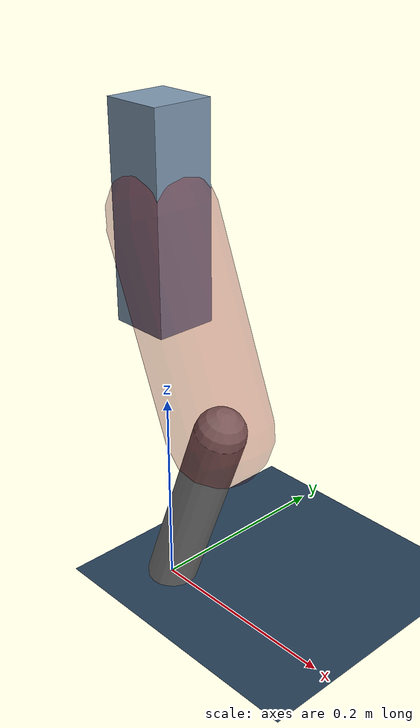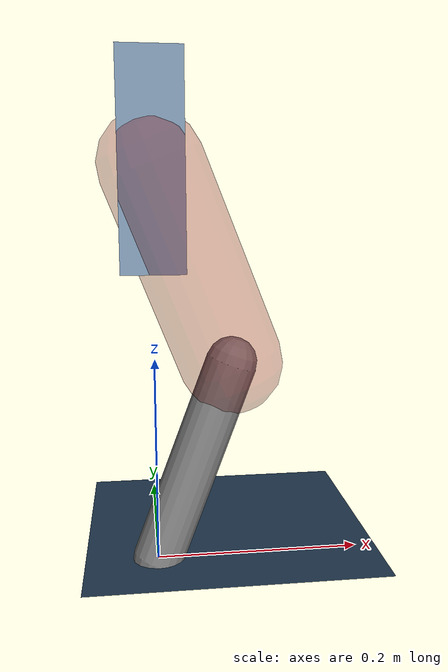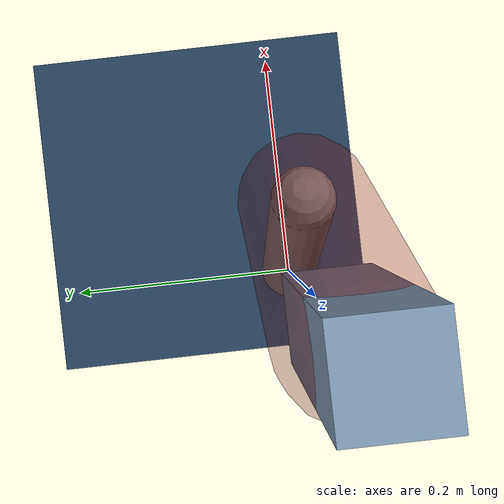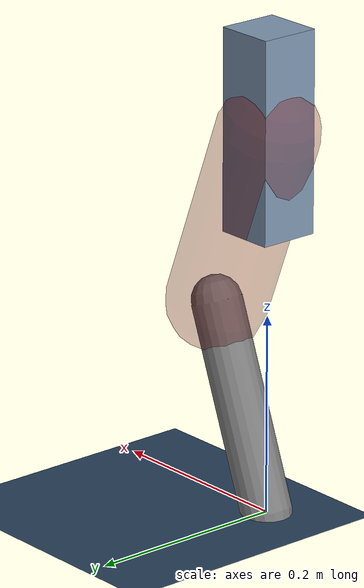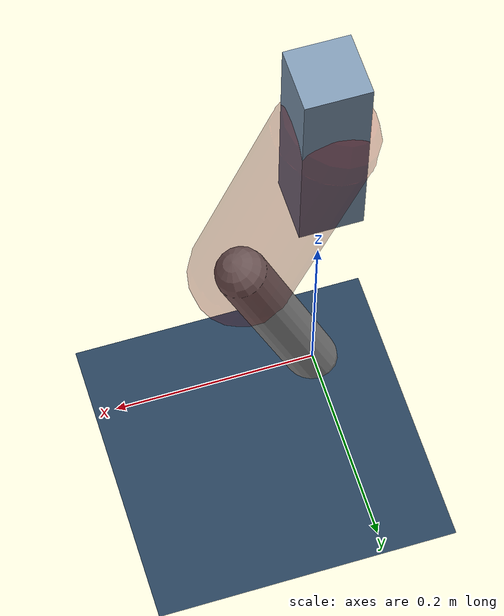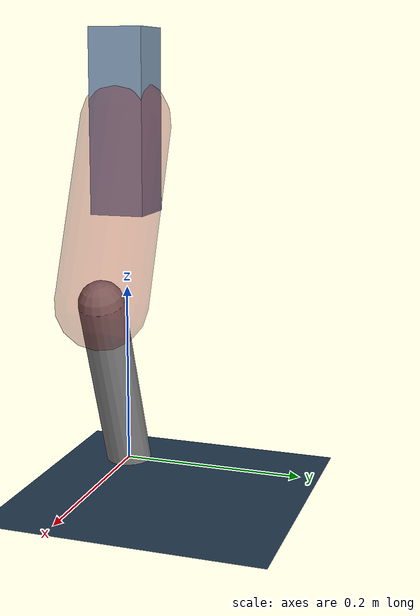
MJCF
<mujoco model="Hopper2D">
	<compiler inertiafromgeom="true" angle="radian" />
	<option timestep="0.001" integrator="implicit" cone="elliptic" solver="Newton" tolerance="1e-10" />

	<default>
		<geom contype="1" conaffinity="1" condim="3" friction="2 0.005 0.0001" solref="0.005 1" />
		<joint limited="true" damping="0.1" />
	</default>

	<asset>
		<texture name="skybox" type="skybox" builtin="gradient" rgb1=".4 .6 .8" rgb2="0 0 0" width="800" height="800" />
		<texture name="grid" type="2d" builtin="checker" rgb1=".1 .2 .3" rgb2=".2 .3 .4" width="300" height="300" mark="edge" markrgb=".2 .3 .4" />
		<material name="ground" texture="grid" texrepeat="1 1" texuniform="true" reflectance="0.1" />
		<material name="leg" rgba="0.5 0.6 0.7 1" />
	</asset>

	<worldbody>

		<geom name="floor" type="plane" size="5 5 0.25" material="ground" />

		<light directional="false" diffuse="0.8 0.8 0.8" specular="0.3 0.3 0.3" pos="0 0 2" dir="0 0 -1" />
		<light mode="targetbodycom" target="base" directional="false" diffuse="0.8 0.8 0.8" specular="0.3 0.3 0.3" pos="0 0 2" dir="0 0 -1" />

		<camera name="fixed" pos="0 -2 1" xyaxes="1 0 0 0 0 1" />
		<camera name="tracking" mode="trackcom" pos="0 -3 1" />

		<body name="root" pos="0 0 0.3840449950692779">
			<joint name="slide_x" type="slide" axis="1 0 0" range="-100 100" />
			<joint name="slide_z" type="slide" axis="0 0 1" range="0 10" />

			<body name="base" pos="0 0 0">
				<geom name="torso" type="box" size="0.03 0.03 0.1" mass="1.312" material="leg" />

				<body name="link1" pos="0 0 0" euler="0 1.197348167114216 0">
					<joint type="hinge" axis="0 -1 0" pos="0 0 0" name="hinge1" limited="true" range="-3.14 3.14" stiffness="0" damping="0.1" />
					<geom name="thigh" type="capsule" fromto="0 0 0 0.2019741401654208 0 0" size="0.05" rgba="0.5 0 0 0.3" mass="0.734535350413552" />

					<body name="link2" pos="0.2019741401654208 0 0" euler="0 0.7330633762293954 0">
						<joint type="hinge" axis="0 -1 0" pos="0 0 0" name="hinge2" limited="true" range="-3.14 3.14" stiffness="0" damping="0.1" />
						<geom name="shank" type="capsule" fromto="0 0 0 0.20938587525008212 0 0" size="0.025" mass="0.4088087002000657" />

					</body>
				</body>
			</body>
		</body>
	</worldbody>

	<actuator>
		<motor name="torque1" joint="hinge1" ctrlrange="-21.67890703103851 21.67890703103851" ctrllimited="true" gear="1" />
		<motor name="torque2" joint="hinge2" ctrlrange="-19.770764558851017 19.770764558851017" ctrllimited="true" gear="1" />
	</actuator>
</mujoco>
